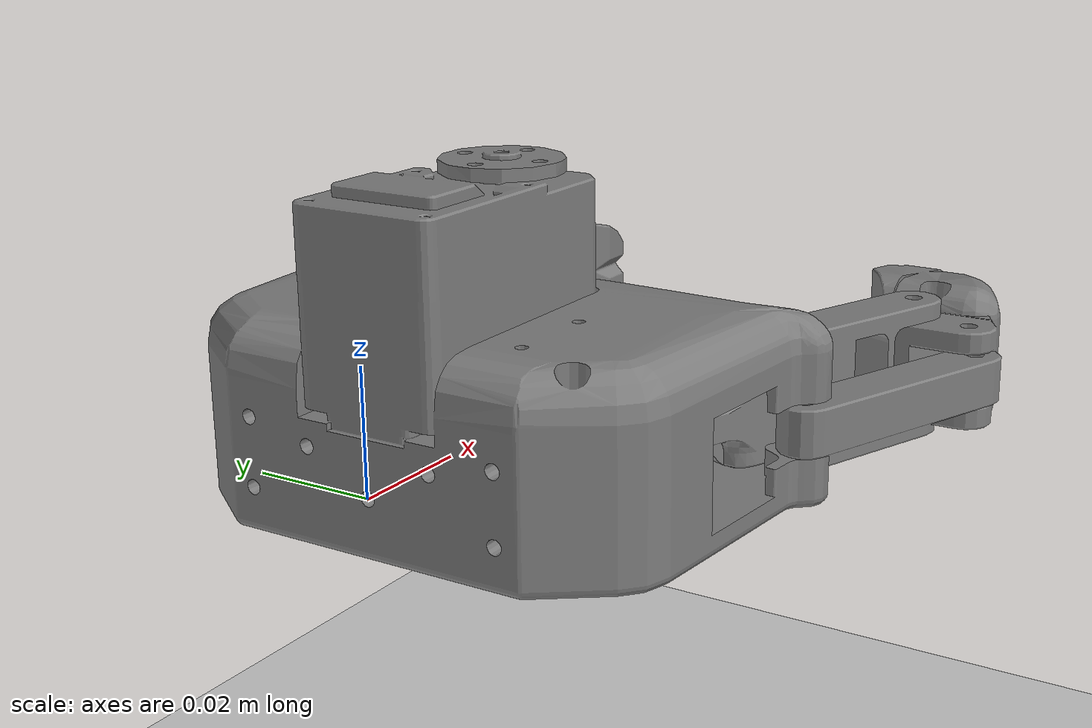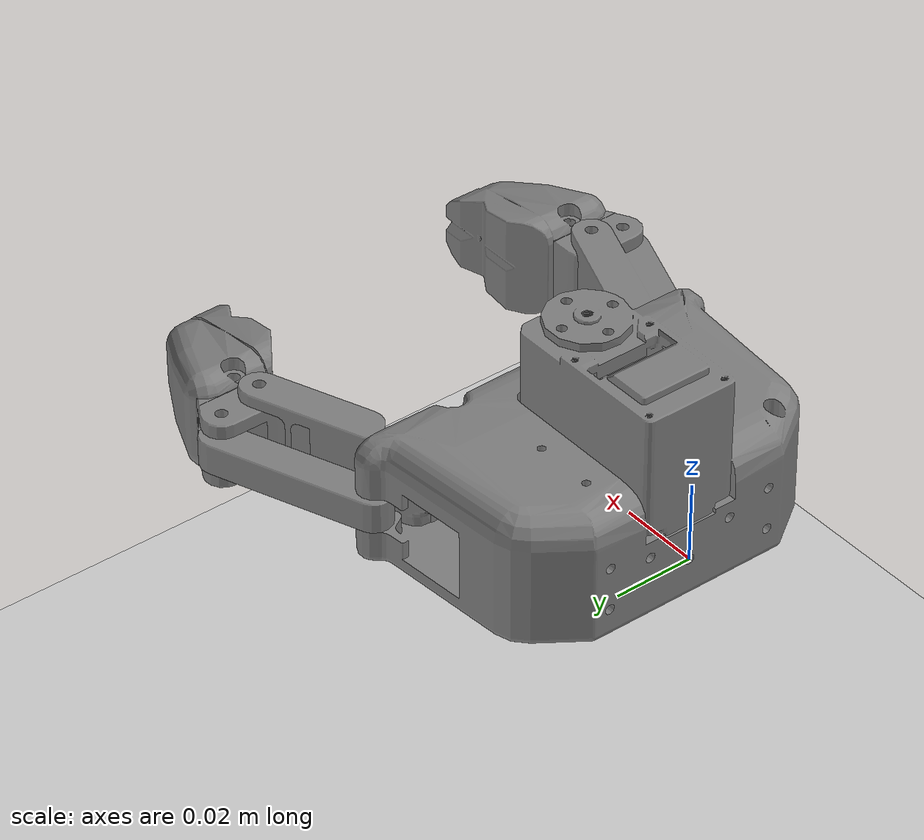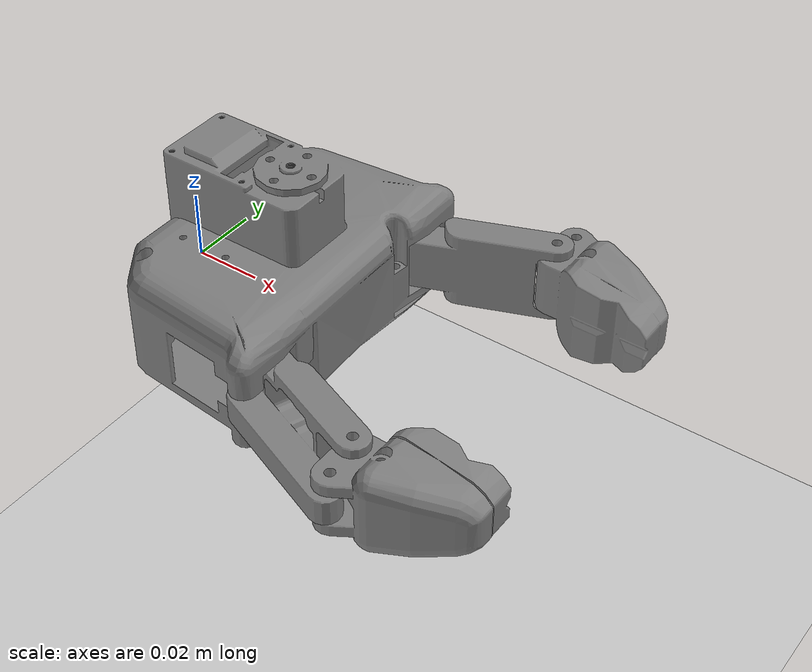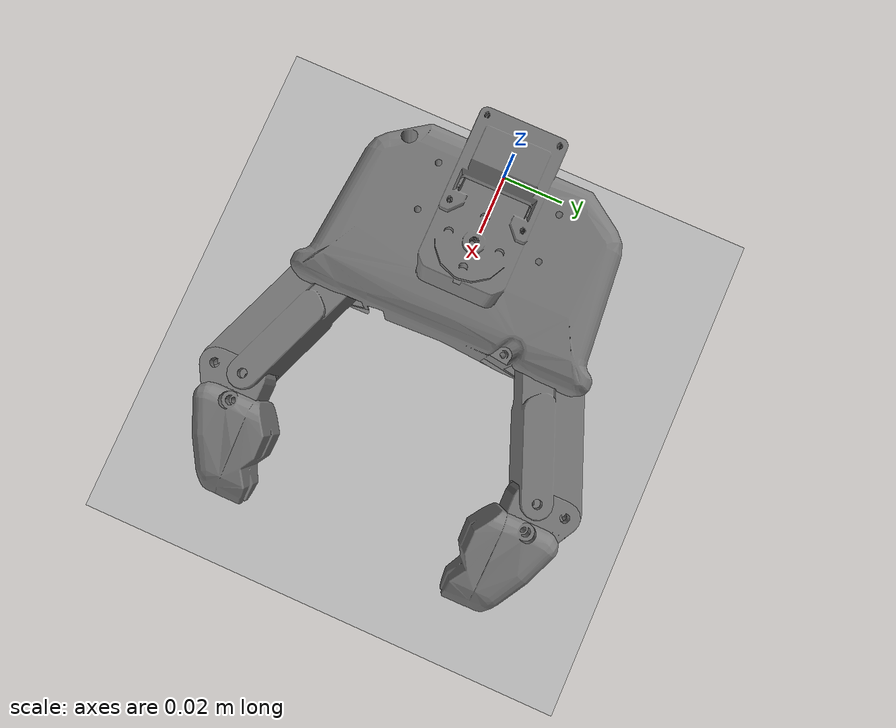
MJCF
<mujoco model="eef">
    <compiler angle="radian" coordinate="local" meshdir="assets/" texturedir="textures/"/>

    <asset>
        <mesh name="base" file="base.stl"/>
        <mesh name="left-proximal" file="left-proximal.stl"/>
        <mesh name="left-distal" file="left-distal.stl"/>
        <mesh name="right-proximal" file="right-proximal.stl"/>
        <mesh name="right-distal" file="right-distal.stl"/>
    </asset>
    <default>
        <default class="ground">
          <geom type="plane" size="10 10 0.1" rgba="0.8 0.8 0.8 1"/>
        </default>
        <default class="visual">
          <geom type="mesh" contype="0" conaffinity="0" density="0" group="2"/>
        </default>
        <default class="collision">
          <geom group="3" type="mesh" contype="0" conaffinity="0"/>
        </default>
    </default>
    <worldbody>
        <geom name="ground" class="ground" pos="0 0 -0.1"/>
        <light directional="true" diffuse="0.8 0.8 0.8" specular="0.2 0.2 0.2" pos="0 0 5" dir="0 0 -1"/>
        <light directional="true" diffuse="0.4 0.4 0.4" specular="0.1 0.1 0.1" pos="5 0 2" dir="-1 0 -0.5"/>
        <body name="base">
            <inertial pos="0 0 0" mass="0.5" diaginertia="0.1 0.1 0.1"/>
            <geom class="visual" mesh="base"/>
            <geom class="collision" mesh="base"/>
            <body name="left-proximal" pos="0.053492 0.0325 -0.005">
                <joint name="left_proximal_joint" type="hinge" axis="0 0 1" pos="0 0 0" limited="true" range="-0.77 0.77"/>
                <inertial pos="0 0 0" mass="0.2" diaginertia="0.05 0.05 0.05"/>
                <geom class="visual" mesh="left-proximal"/>
                <geom class="collision" mesh="left-proximal"/>
                <body name="left-distal" pos="0.037848 0.012944 -0.001">
                    <joint name="left_distal_joint" type="hinge" axis="0 0 1" pos="0 0 0"/>
                    <inertial pos="0 0 0" mass="0.1" diaginertia="0.02 0.02 0.02"/>
                    <geom class="visual" mesh="left-distal"/>
                    <geom class="collision" mesh="left-distal"/>
                </body>
            </body>
            <body name="right-proximal" pos="0.053492 -0.0325 -0.005">
                <joint name="right_proximal_joint" type="hinge" axis="0 0 1" pos="0 0 0"/>
                <inertial pos="0 0 0" mass="0.2" diaginertia="0.05 0.05 0.05"/>
                <geom class="visual" mesh="right-proximal"/>
                <geom class="collision" mesh="right-proximal"/>
                <body name="right-distal" pos="0.037848 -0.012944 -0.001">
                    <joint name="right_distal_joint" type="hinge" axis="0 0 1" pos="0 0 0"/>
                    <inertial pos="0 0 0" mass="0.1" diaginertia="0.02 0.02 0.02"/>
                    <geom class="visual" mesh="right-distal"/>
                    <geom class="collision" mesh="right-distal"/>
                </body>
            </body>
        </body>
    </worldbody>

    <equality>
        <joint joint1="left_proximal_joint" joint2="left_distal_joint" polycoef="0 -1 0 0 0"/>
        <joint joint1="right_proximal_joint" joint2="right_distal_joint" polycoef="0 -1 0 0 0"/>
        <joint joint1="left_distal_joint" joint2="right_distal_joint" polycoef="0 -1 0 0 0"/>
    </equality>

    <actuator>
        <position name="motor" joint="left_proximal_joint" kp="100" dampratio="1" forcelimited="false" />
    </actuator>
</mujoco>
